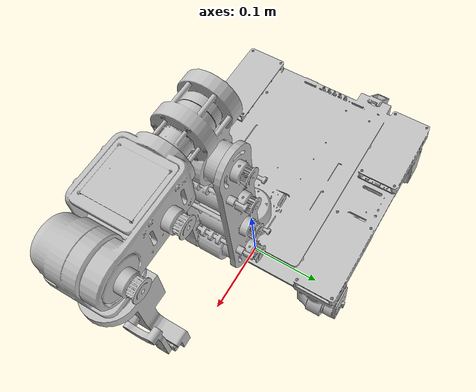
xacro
<?xml version="1.0"?>
<robot xmlns:xacro="http://www.ros.org/wiki/xacro" name="manipulator">
    <xacro:arg name="initial_positions_file" default="initial_positions.yaml" />

    <!-- Import manipulator urdf file -->
    <xacro:include filename="$(find manipulator_description)/urdf/manipulator.urdf" />

    <!-- Import control_xacro -->
    <xacro:include filename="manipulator.ros2_control.xacro" />

    <xacro:manipulator_ros2_control name="FakeSystem" initial_positions_file="$(arg initial_positions_file)"/>

</robot>

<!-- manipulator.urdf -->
<robot
  name="manipulator">
  <link
    name="base_link">
    <inertial>
      <origin
        xyz="-0.0900189764645956 0.000649352921620301 0.0688904601116507"
        rpy="0 0 0" />
      <mass
        value="4.57082606578104" />
      <inertia
        ixx="0.00724814588488116"
        ixy="2.56413170215366E-06"
        ixz="0.000190723101370851"
        iyy="0.0120730740519994"
        iyz="-3.68016466466456E-07"
        izz="0.0184704489954834" />
    </inertial>
    <visual>
      <origin
        xyz="0 0 0"
        rpy="0 0 0" />
      <geometry>
        <mesh
          filename="package://manipulator_description/meshes/base_link.STL" />
      </geometry>
      <material
        name="">
        <color
          rgba="0.752941176470588 0.752941176470588 0.752941176470588 1" />
      </material>
    </visual>
    <collision>
      <origin
        xyz="0 0 0"
        rpy="0 0 0" />
      <geometry>
        <mesh
          filename="package://manipulator_description/meshes/base_link.STL" />
      </geometry>
    </collision>
  </link>
  <link
    name="link1">
    <inertial>
      <origin
        xyz="0.0460351193300182 0.000664287195140079 0.154506956872591"
        rpy="0 0 0" />
      <mass
        value="0.254561487975799" />
      <inertia
        ixx="0.000120472928076238"
        ixy="2.26543583769741E-06"
        ixz="-6.10454618895842E-05"
        iyy="0.000220909895675933"
        iyz="2.36014610913684E-06"
        izz="0.000147238974921357" />
    </inertial>
    <visual>
      <origin
        xyz="0 0 0"
        rpy="0 0 0" />
      <geometry>
        <mesh
          filename="package://manipulator_description/meshes/link1.STL" />
      </geometry>
      <material
        name="">
        <color
          rgba="0.752941176470588 0.752941176470588 0.752941176470588 1" />
      </material>
    </visual>
    <collision>
      <origin
        xyz="0 0 0"
        rpy="0 0 0" />
      <geometry>
        <mesh
          filename="package://manipulator_description/meshes/link1.STL" />
      </geometry>
    </collision>
  </link>
  <joint
    name="joint1"
    type="revolute">
    <origin
      xyz="0 0 0"
      rpy="0 0 0" />
    <parent
      link="base_link" />
    <child
      link="link1" />
    <axis
      xyz="0 0 -1" />
    <limit
      lower="-3.14"
      upper="3.14"
      effort="100"
      velocity="1" />
  </joint>
  <link
    name="link2">
    <inertial>
      <origin
        xyz="1.80392507294347E-05 0.089980612315841 -0.0129528394303072"
        rpy="0 0 0" />
      <mass
        value="1.04400658098434" />
      <inertia
        ixx="0.00385525013994589"
        ixy="-6.68725878676148E-09"
        ixz="2.99491799048462E-08"
        iyy="0.000244306702463398"
        iyz="-3.58686064304757E-08"
        izz="0.00406415538149286" />
    </inertial>
    <visual>
      <origin
        xyz="0 0 0"
        rpy="0 0 0" />
      <geometry>
        <mesh
          filename="package://manipulator_description/meshes/link2.STL" />
      </geometry>
      <material
        name="">
        <color
          rgba="0.752941176470588 0.752941176470588 0.752941176470588 1" />
      </material>
    </visual>
    <collision>
      <origin
        xyz="0 0 0"
        rpy="0 0 0" />
      <geometry>
        <mesh
          filename="package://manipulator_description/meshes/link2.STL" />
      </geometry>
    </collision>
  </link>
  <joint
    name="joint2"
    type="revolute">
    <origin
      xyz="0.0600000000000004 0 0.166403000000002"
      rpy="1.5707963267949 0 0" />
    <parent
      link="link1" />
    <child
      link="link2" />
    <axis
      xyz="0 0 1" />
    <limit
      lower="-3.14"
      upper="3.14"
      effort="100"
      velocity="1" />
  </joint>
  <link
    name="link3">
    <inertial>
      <origin
        xyz="0.0301224569912638 0.00088359911768579 -0.000516713303727967"
        rpy="0 0 0" />
      <mass
        value="0.360136694537505" />
      <inertia
        ixx="0.000113282281754181"
        ixy="-6.31617808768842E-05"
        ixz="4.0937724948034E-06"
        iyy="0.00029676895594374"
        iyz="1.65323507515529E-06"
        izz="0.000310858877897744" />
    </inertial>
    <visual>
      <origin
        xyz="0 0 0"
        rpy="0 0 0" />
      <geometry>
        <mesh
          filename="package://manipulator_description/meshes/link3.STL" />
      </geometry>
      <material
        name="">
        <color
          rgba="0.752941176470588 0.752941176470588 0.752941176470588 1" />
      </material>
    </visual>
    <collision>
      <origin
        xyz="0 0 0"
        rpy="0 0 0" />
      <geometry>
        <mesh
          filename="package://manipulator_description/meshes/link3.STL" />
      </geometry>
    </collision>
  </link>
  <joint
    name="joint3"
    type="revolute">
    <origin
      xyz="0 0.179999999999999 0"
      rpy="0 0 1.5707963267949" />
    <parent
      link="link2" />
    <child
      link="link3" />
    <axis
      xyz="0 0 1" />
    <limit
      lower="-3.14"
      upper="3.14"
      effort="100"
      velocity="1" />
  </joint>
  <link
    name="link4">
    <inertial>
      <origin
        xyz="0.00207111442506586 -0.00872426378175275 0.0945125492848449"
        rpy="0 0 0" />
      <mass
        value="0.455053086420313" />
      <inertia
        ixx="0.000720997881322542"
        ixy="5.04373361969945E-09"
        ixz="-7.51186752682352E-08"
        iyy="0.000586014625148737"
        iyz="0.000117229790415013"
        izz="0.000286461363141707" />
    </inertial>
    <visual>
      <origin
        xyz="0 0 0"
        rpy="0 0 0" />
      <geometry>
        <mesh
          filename="package://manipulator_description/meshes/link4.STL" />
      </geometry>
      <material
        name="">
        <color
          rgba="0.752941176470588 0.752941176470588 0.752941176470588 1" />
      </material>
    </visual>
    <collision>
      <origin
        xyz="0 0 0"
        rpy="0 0 0" />
      <geometry>
        <mesh
          filename="package://manipulator_description/meshes/link4.STL" />
      </geometry>
    </collision>
  </link>
  <joint
    name="joint4"
    type="revolute">
    <origin
      xyz="0.06 0 0"
      rpy="1.5707963267949 0 0" />
    <parent
      link="link3" />
    <child
      link="link4" />
    <axis
      xyz="0 0 -1" />
    <limit
      lower="-3.14"
      upper="3.14"
      effort="100"
      velocity="1" />
  </joint>
  <link
    name="link5">
    <inertial>
      <origin
        xyz="0.0120838028018385 5.29755239675467E-10 0.0017616210499789"
        rpy="0 0 0" />
      <mass
        value="0.1919643786863" />
      <inertia
        ixx="7.82682988302083E-05"
        ixy="-9.7455066765594E-13"
        ixz="-3.05349683997731E-06"
        iyy="9.74815417100329E-05"
        iyz="-1.19556408776339E-12"
        izz="0.000110368050940256" />
    </inertial>
    <visual>
      <origin
        xyz="0 0 0"
        rpy="0 0 0" />
      <geometry>
        <mesh
          filename="package://manipulator_description/meshes/link5.STL" />
      </geometry>
      <material
        name="">
        <color
          rgba="0.752941176470588 0.752941176470588 0.752941176470588 1" />
      </material>
    </visual>
    <collision>
      <origin
        xyz="0 0 0"
        rpy="0 0 0" />
      <geometry>
        <mesh
          filename="package://manipulator_description/meshes/link5.STL" />
      </geometry>
    </collision>
  </link>
  <joint
    name="joint5"
    type="revolute">
    <origin
      xyz="0 0 0.151"
      rpy="1.5707963267949 0 -3.14159265358979" />
    <parent
      link="link4" />
    <child
      link="link5" />
    <axis
      xyz="0 0 1" />
    <limit
      lower="-3.14"
      upper="3.14"
      effort="100"
      velocity="1" />
  </joint>
  <link
    name="link6">
    <inertial>
      <origin
        xyz="0.00017441390333478 -8.95910294932365E-05 0.0479239640265615"
        rpy="0 0 0" />
      <mass
        value="0.00925955633264145" />
      <inertia
        ixx="1.33715235113203E-06"
        ixy="-3.3412849341875E-08"
        ixz="2.63241803018795E-09"
        iyy="1.34917791267447E-06"
        iyz="-1.78873030816875E-09"
        izz="2.46287865404216E-06" />
    </inertial>
    <visual>
      <origin
        xyz="0 0 0"
        rpy="0 0 0" />
      <geometry>
        <mesh
          filename="package://manipulator_description/meshes/link6.STL" />
      </geometry>
      <material
        name="">
        <color
          rgba="0.6 0.6 0.6 1" />
      </material>
    </visual>
    <collision>
      <origin
        xyz="0 0 0"
        rpy="0 0 0" />
      <geometry>
        <mesh
          filename="package://manipulator_description/meshes/link6.STL" />
      </geometry>
    </collision>
  </link>
  <joint
    name="joint6"
    type="revolute">
    <origin
      xyz="0 0 0"
      rpy="1.5707963267949 0 1.5707963267949" />
    <parent
      link="link5" />
    <child
      link="link6" />
    <axis
      xyz="0 0 1" />
    <limit
      lower="-3.14"
      upper="3.14"
      effort="100"
      velocity="1" />
  </joint>
  <link
    name="link_hand">
    <inertial>
      <origin
        xyz="-0.00139139563993723 -0.00180513570840485 -0.00989424491799901"
        rpy="0 0 0" />
      <mass
        value="0.184940871711744" />
      <inertia
        ixx="0.000118512503877906"
        ixy="1.91321875551986E-08"
        ixz="2.28806582015251E-08"
        iyy="0.000103524975403197"
        iyz="1.60835929412105E-06"
        izz="0.000181351552494407" />
    </inertial>
    <visual>
      <origin
        xyz="0 0 0"
        rpy="0 0 0" />
      <geometry>
        <mesh
          filename="package://manipulator_description/meshes/link_hand.STL" />
      </geometry>
      <material
        name="">
        <color
          rgba="0.752941176470588 0.752941176470588 0.752941176470588 1" />
      </material>
    </visual>
    <collision>
      <origin
        xyz="0 0 0"
        rpy="0 0 0" />
      <geometry>
        <mesh
          filename="package://manipulator_description/meshes/link_hand.STL" />
      </geometry>
    </collision>
  </link>
  <joint
    name="joint_hand"
    type="fixed">
    <origin
      xyz="0 0 0.11564"
      rpy="1.5708 0 1.5708" />
    <parent
      link="link6" />
    <child
      link="link_hand" />
    <axis
      xyz="0 0 0" />
    <limit
      lower="-3.14"
      upper="3.14"
      effort="100"
      velocity="1" />
  </joint>
  <link
    name="link_right">
    <inertial>
      <origin
        xyz="-0.023301935377947 0.0387777189112534 0.00451745015192889"
        rpy="0 0 0" />
      <mass
        value="0.0056767224438465" />
      <inertia
        ixx="2.77307775534538E-07"
        ixy="4.43872716727828E-08"
        ixz="-7.28096014584253E-09"
        iyy="8.58071604210895E-07"
        iyz="-2.77409495210062E-22"
        izz="1.1058335197716E-06" />
    </inertial>
    <visual>
      <origin
        xyz="0 0 0"
        rpy="0 0 0" />
      <geometry>
        <mesh
          filename="package://manipulator_description/meshes/link_right.STL" />
      </geometry>
      <material
        name="">
        <color
          rgba="0.752941176470588 0.752941176470588 0.752941176470588 1" />
      </material>
    </visual>
    <collision>
      <origin
        xyz="0 0 0"
        rpy="0 0 0" />
      <geometry>
        <mesh
          filename="package://manipulator_description/meshes/link_right.STL" />
      </geometry>
    </collision>
  </link>
  <joint
    name="joint_right"
    type="prismatic">
    <origin
      xyz="0 0.04 0.002"
      rpy="0 0 1.5708" />
    <parent
      link="link_hand" />
    <child
      link="link_right" />
    <axis
      xyz="0 -1 0" />
    <limit
      lower="0"
      upper="0.05"
      effort="100"
      velocity="1" />
  </joint>
  <link
    name="link_left">
    <inertial>
      <origin
        xyz="0.0273678309195227 0.0387777189112687 0.00451745015192828"
        rpy="0 0 0" />
      <mass
        value="0.00567672244384649" />
      <inertia
        ixx="2.7730777553458E-07"
        ixy="4.43872716726978E-08"
        ixz="7.28096014584258E-09"
        iyy="8.58071604210852E-07"
        iyz="1.88549304310383E-22"
        izz="1.1058335197716E-06" />
    </inertial>
    <visual>
      <origin
        xyz="0 0 0"
        rpy="0 0 0" />
      <geometry>
        <mesh
          filename="package://manipulator_description/meshes/link_left.STL" />
      </geometry>
      <material
        name="">
        <color
          rgba="0.752941176470588 0.752941176470588 0.752941176470588 1" />
      </material>
    </visual>
    <collision>
      <origin
        xyz="0 0 0"
        rpy="0 0 0" />
      <geometry>
        <mesh
          filename="package://manipulator_description/meshes/link_left.STL" />
      </geometry>
    </collision>
  </link>
  <joint
    name="joint_left"
    type="prismatic">
    <origin
      xyz="0 0.04 0.002"
      rpy="0 0 -1.5708" />
    <parent
      link="link_hand" />
    <child
      link="link_left" />
    <axis
      xyz="0 -1 0" />
    <limit
      lower="0"
      upper="0.05"
      effort="100"
      velocity="1" />
    <mimic
      joint="joint_right"
      multiplier="1"
      offset="0" />
  </joint>
</robot>
